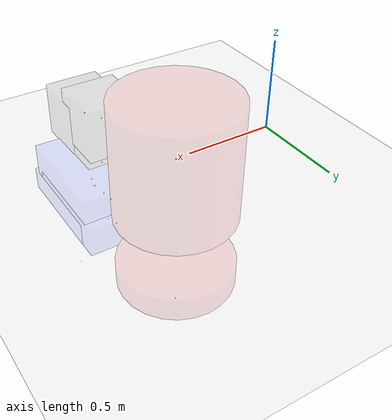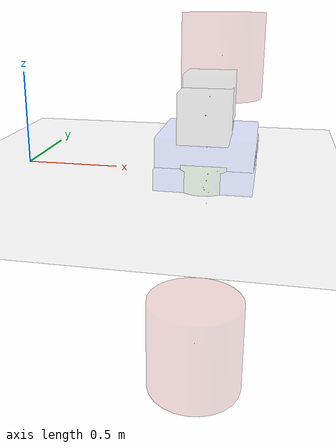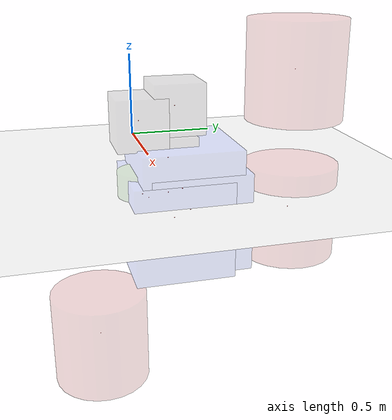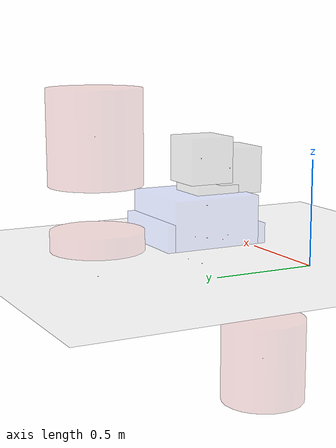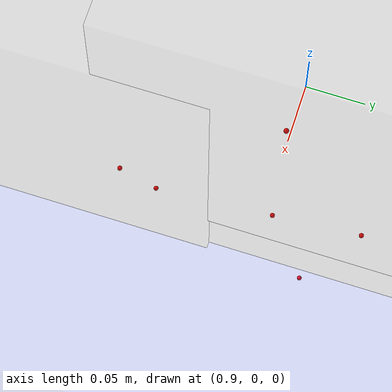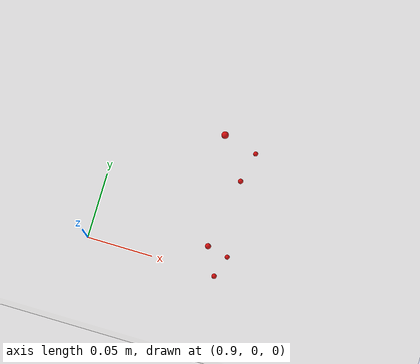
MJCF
<?xml version="1.0" ?><mujoco>
		<visual>
    			<headlight ambient="1.0 1.0 1.0" diffuse=".0 .0 .0" specular="0.0 0.0 0.0"/>
		</visual>
    	<compiler angle="radian" coordinate="local" meshdir="../stls/fetch" texturedir="../textures"/>
    	<option cone="elliptic" timestep="0.001"/>

    	<asset>
        		<texture builtin="gradient" height="32" rgb1="0.44 0.85 0.56" rgb2="0.46 0.87 0.58" type="skybox" width="32"/>
        		<texture file="block.png" gridlayout=".U..LFRB.D.." gridsize="3 4" name="texture_block"/>

        		<material name="seg_mat" reflectance="0" shininess="0" specular="0"/>
        		<material name="floor_mat" reflectance="0" rgba="0.2 0.2 0.2 1" shininess="0.5" specular="0"/>
        		<material name="table_mat" reflectance="0" rgba="0.93 0.93 0.93 1" shininess="0.5" specular="0" texrepeat="1 1"/>
        		<material name="block_mat" reflectance="0" rgba="0.2 0.2 0.2 1" shininess="0.5" specular="0"/>
        		<material name="puck_mat" reflectance="0" rgba="0.2 0.2 0.2 1" shininess="0.5" specular="0"/>
    	</asset>

    	<worldbody>
        		<geom material="table_mat" name="table0" pos="0 0 -0.05" size="2.5 2.5 0.1" type="plane"/>

        		<body name="external_camera_body_0" pos="0 0 0">
            			<camera euler="0 1.3 1.57" fovy="38" name="external_camera_0" pos="2.15 1.0 0.4"/>
        		</body>
        		<body name="external_camera_body_1" pos="0 0 0">
            			<camera euler="0 0.1 1.57" fovy="60" name="external_camera_1" pos="1.4 1.0 0.9"/>
        		</body>
        		<body mocap="true" name="camera_mover" pos="0 0 0.4">
            			<camera euler="0 1.3 1.57" fovy="38" name="agent_camera"/>
        		</body>
    		<body name="0" pos="0.9959508180618286 0.0780753344297409 -0.03790975734591484">			<geom condim="4" friction="1.0 0.5 0.5" mass=".1" name="0" pos="0 0 0" rgba="0.16470588235294117 0.29411764705882354 0.8431372549019608 0.2" size="0.25 0.25 0.25" solimp="0.99 0.99 0.001" solref="0.001 1" type="box"/>			<joint damping=".01" name="0" type="free"/>			<site name="0" pos="0 0 0" rgba="1 0 0 1" size="0.002 0.002 0.002" type="sphere"/>		</body>		<body name="1" pos="1.0012942552566528 0.6616347432136536 0.5410369038581848">			<geom condim="4" friction="1.0 0.5 0.5" mass=".1" name="1" pos="0 0 0" rgba="0.6784313725490196 0.13725490196078433 0.13725490196078433 0.2" size="0.25 0.25 0.25" solimp="0.99 0.99 0.001" solref="0.001 1" type="cylinder"/>			<joint damping=".01" name="1" type="free"/>			<site name="1" pos="0 0 0" rgba="1 0 0 1" size="0.002 0.002 0.002" type="sphere"/>		</body>		<body name="2" pos="0.9983112215995789 0.040136124938726425 0.3920246362686157">			<geom condim="4" friction="1.0 0.5 0.5" mass=".1" name="2" pos="0 0 0" rgba="0.3411764705882353 0.3411764705882353 0.3411764705882353 0.2" size="0.125 0.125 0.125" solimp="0.99 0.99 0.001" solref="0.001 1" type="box"/>			<joint damping=".01" name="2" type="free"/>			<site name="2" pos="0 0 0" rgba="1 0 0 1" size="0.002 0.002 0.002" type="sphere"/>		</body>		<body name="3" pos="0.9967907667160034 -0.1292668581008911 -0.047805242240428925">			<geom condim="4" friction="1.0 0.5 0.5" mass=".1" name="3" pos="0 0 0" rgba="0.11372549019607843 0.4117647058823529 0.0784313725490196 0.2" size="0.125 0.125 0.125" solimp="0.99 0.99 0.001" solref="0.001 1" type="cylinder"/>			<joint damping=".01" name="3" type="free"/>			<site name="3" pos="0 0 0" rgba="1 0 0 1" size="0.002 0.002 0.002" type="sphere"/>		</body>		<body name="4" pos="0.9965671896934509 0.12059859931468964 -0.15821796655654907">			<geom condim="4" friction="1.0 0.5 0.5" mass=".1" name="4" pos="0 0 0" rgba="0.16470588235294117 0.29411764705882354 0.8431372549019608 0.2" size="0.25 0.25 0.25" solimp="0.99 0.99 0.001" solref="0.001 1" type="box"/>			<joint damping=".01" name="4" type="free"/>			<site name="4" pos="0 0 0" rgba="1 0 0 1" size="0.002 0.002 0.002" type="sphere"/>		</body>		<body name="5" pos="0.9991996884346008 -0.3777201771736145 -0.813645601272583">			<geom condim="4" friction="1.0 0.5 0.5" mass=".1" name="5" pos="0 0 0" rgba="0.6784313725490196 0.13725490196078433 0.13725490196078433 0.2" size="0.25 0.25 0.25" solimp="0.99 0.99 0.001" solref="0.001 1" type="cylinder"/>			<joint damping=".01" name="5" type="free"/>			<site name="5" pos="0 0 0" rgba="1 0 0 1" size="0.002 0.002 0.002" type="sphere"/>		</body>		<body name="6" pos="0.9942013025283813 0.005635198205709457 0.13119839131832123">			<geom condim="4" friction="1.0 0.5 0.5" mass=".1" name="6" pos="0 0 0" rgba="0.3411764705882353 0.3411764705882353 0.3411764705882353 0.2" size="0.125 0.125 0.125" solimp="0.99 0.99 0.001" solref="0.001 1" type="box"/>			<joint damping=".01" name="6" type="free"/>			<site name="6" pos="0 0 0" rgba="1 0 0 1" size="0.002 0.002 0.002" type="sphere"/>		</body>		<body name="7" pos="0.9967642426490784 -0.09806902706623077 -0.07037761062383652">			<geom condim="4" friction="1.0 0.5 0.5" mass=".1" name="7" pos="0 0 0" rgba="0.11372549019607843 0.4117647058823529 0.0784313725490196 0.2" size="0.125 0.125 0.125" solimp="0.99 0.99 0.001" solref="0.001 1" type="cylinder"/>			<joint damping=".01" name="7" type="free"/>			<site name="7" pos="0 0 0" rgba="1 0 0 1" size="0.002 0.002 0.002" type="sphere"/>		</body>		<body name="8" pos="0.9969489574432373 0.034134507179260254 -0.192661315202713">			<geom condim="4" friction="1.0 0.5 0.5" mass=".1" name="8" pos="0 0 0" rgba="0.16470588235294117 0.29411764705882354 0.8431372549019608 0.2" size="0.25 0.25 0.25" solimp="0.99 0.99 0.001" solref="0.001 1" type="box"/>			<joint damping=".01" name="8" type="free"/>			<site name="8" pos="0 0 0" rgba="1 0 0 1" size="0.002 0.002 0.002" type="sphere"/>		</body>		<body name="9" pos="0.9974589347839355 0.6601819396018982 -0.19475628435611725">			<geom condim="4" friction="1.0 0.5 0.5" mass=".1" name="9" pos="0 0 0" rgba="0.6784313725490196 0.13725490196078433 0.13725490196078433 0.2" size="0.25 0.25 0.25" solimp="0.99 0.99 0.001" solref="0.001 1" type="cylinder"/>			<joint damping=".01" name="9" type="free"/>			<site name="9" pos="0 0 0" rgba="1 0 0 1" size="0.002 0.002 0.002" type="sphere"/>		</body>		<body name="10" pos="0.998655378818512 -0.13996021449565887 0.32824259996414185">			<geom condim="4" friction="1.0 0.5 0.5" mass=".1" name="10" pos="0 0 0" rgba="0.3411764705882353 0.3411764705882353 0.3411764705882353 0.2" size="0.125 0.125 0.125" solimp="0.99 0.99 0.001" solref="0.001 1" type="box"/>			<joint damping=".01" name="10" type="free"/>			<site name="10" pos="0 0 0" rgba="1 0 0 1" size="0.002 0.002 0.002" type="sphere"/>		</body>		<body name="11" pos="0.996566653251648 0.0031871702522039413 -0.05182664841413498">			<geom condim="4" friction="1.0 0.5 0.5" mass=".1" name="11" pos="0 0 0" rgba="0.11372549019607843 0.4117647058823529 0.0784313725490196 0.2" size="0.125 0.125 0.125" solimp="0.99 0.99 0.001" solref="0.001 1" type="cylinder"/>			<joint damping=".01" name="11" type="free"/>			<site name="11" pos="0 0 0" rgba="1 0 0 1" size="0.002 0.002 0.002" type="sphere"/>		</body>	</worldbody>
</mujoco>
